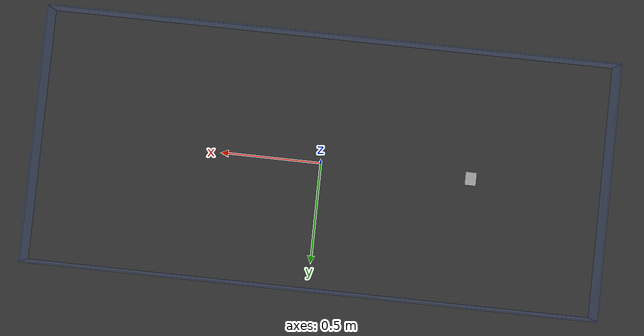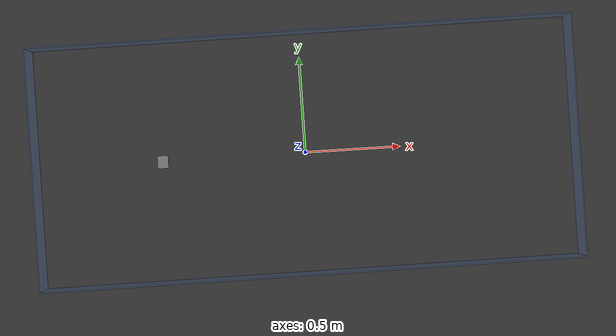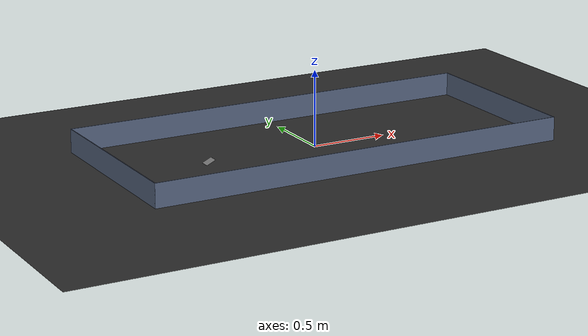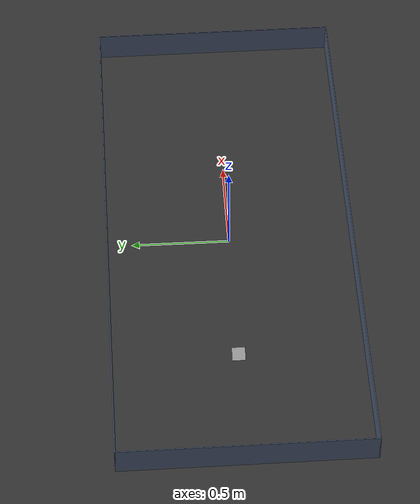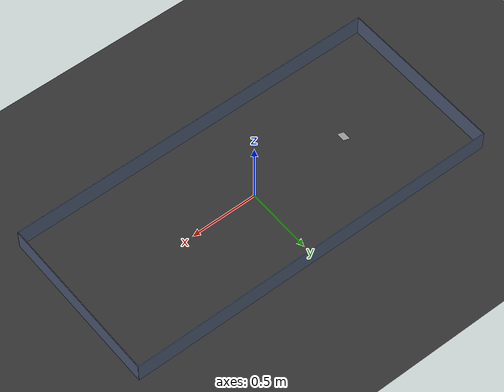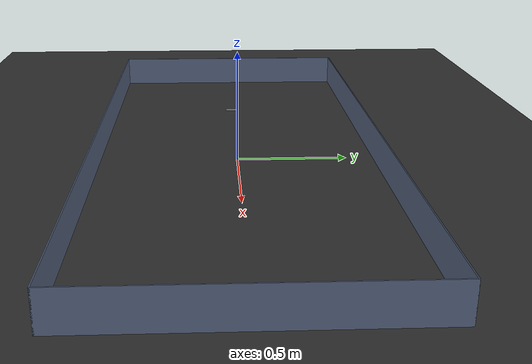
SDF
<sdf version="1.6">
 <world name="map_v2_fleet">
  <plugin filename="gz-sim-physics-system" name="gz::sim::systems::Physics">
   <engine><filename>gz-physics-dartsim-plugin</filename></engine>
  </plugin>
  <plugin filename="gz-sim-user-commands-system" name="gz::sim::systems::UserCommands"/>
  <plugin filename="gz-sim-scene-broadcaster-system" name="gz::sim::systems::SceneBroadcaster"/>
  <plugin filename="gz-sim-sensors-system" name="gz::sim::systems::Sensors">
   <render_engine>ogre2</render_engine>
  </plugin>
  <plugin filename="gz-sim-imu-system" name="gz::sim::systems::Imu"/>
  <light type="directional" name="sun">
   <cast_shadows>false</cast_shadows>
   <pose>0 0 10 0 0 0</pose>
   <diffuse>0.9 0.9 0.9 1</diffuse>
   <specular>0.2 0.2 0.2 1</specular>
   <direction>-0.4 0.2 -0.9</direction>
  </light>
  <model name="ground_plane">
   <static>true</static>
   <link name="link">
    <collision name="collision">
     <geometry><plane><normal>0 0 1</normal><size>100 100</size></plane></geometry>
    </collision>
    <visual name="visual">
     <geometry><plane><normal>0 0 1</normal><size>100 100</size></plane></geometry>
     <material><ambient>0.2 0.2 0.2 1</ambient><diffuse>0.2 0.2 0.2 1</diffuse></material>
    </visual>
   </link>
  </model>
  <model name="track_v2_fleet">
   <static>true</static>
   <link name="link">
    <collision name="wall_00_col">
     <pose>0.00000 0.62750 0.07750 0 0 0</pose>
     <geometry><box><size>2.81000 0.00500 0.15500</size></box></geometry>
     <surface><friction><ode><mu>0.9</mu><mu2>0.9</mu2></ode></friction></surface>
    </collision>
    <visual name="wall_00_vis">
     <pose>0.00000 0.62750 0.07750 0 0 0</pose>
     <geometry><box><size>2.81000 0.00500 0.15500</size></box></geometry>
     <material><ambient>0.30 0.35 0.45 1</ambient><diffuse>0.30 0.35 0.45 1</diffuse></material>
    </visual>
    <collision name="wall_01_col">
     <pose>0.00000 -0.62750 0.07750 0 0 0</pose>
     <geometry><box><size>2.81000 0.00500 0.15500</size></box></geometry>
     <surface><friction><ode><mu>0.9</mu><mu2>0.9</mu2></ode></friction></surface>
    </collision>
    <visual name="wall_01_vis">
     <pose>0.00000 -0.62750 0.07750 0 0 0</pose>
     <geometry><box><size>2.81000 0.00500 0.15500</size></box></geometry>
     <material><ambient>0.30 0.35 0.45 1</ambient><diffuse>0.30 0.35 0.45 1</diffuse></material>
    </visual>
    <collision name="wall_02_col">
     <pose>-1.40250 0.00000 0.07750 0 0 0</pose>
     <geometry><box><size>0.00500 1.26000 0.15500</size></box></geometry>
     <surface><friction><ode><mu>0.9</mu><mu2>0.9</mu2></ode></friction></surface>
    </collision>
    <visual name="wall_02_vis">
     <pose>-1.40250 0.00000 0.07750 0 0 0</pose>
     <geometry><box><size>0.00500 1.26000 0.15500</size></box></geometry>
     <material><ambient>0.30 0.35 0.45 1</ambient><diffuse>0.30 0.35 0.45 1</diffuse></material>
    </visual>
    <collision name="wall_03_col">
     <pose>1.40250 0.00000 0.07750 0 0 0</pose>
     <geometry><box><size>0.00500 1.26000 0.15500</size></box></geometry>
     <surface><friction><ode><mu>0.9</mu><mu2>0.9</mu2></ode></friction></surface>
    </collision>
    <visual name="wall_03_vis">
     <pose>1.40250 0.00000 0.07750 0 0 0</pose>
     <geometry><box><size>0.00500 1.26000 0.15500</size></box></geometry>
     <material><ambient>0.30 0.35 0.45 1</ambient><diffuse>0.30 0.35 0.45 1</diffuse></material>
    </visual>
   </link>
  </model>
  <model name="dock_tag_7">
   <static>true</static>
   <link name="link">
    <visual name="face">
     <pose>-0.74979 0 0.01409 0 -0.436332 0</pose>
     <geometry><plane><normal>0 0 1</normal><size>0.06667 0.06667</size></plane></geometry>
     <material>
      <ambient>0.6 0.6 0.6 1</ambient>
      <diffuse>0.6 0.6 0.6 1</diffuse>
      <pbr><metal><albedo_map>model://control/map/map_v2_fleet/textures/dock_tag_7.png</albedo_map></metal></pbr>
     </material>
    </visual>
   </link>
  </model>
 </world>
</sdf>
